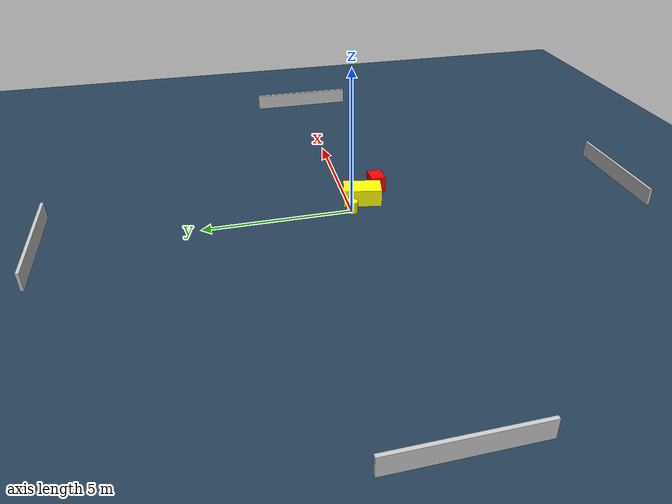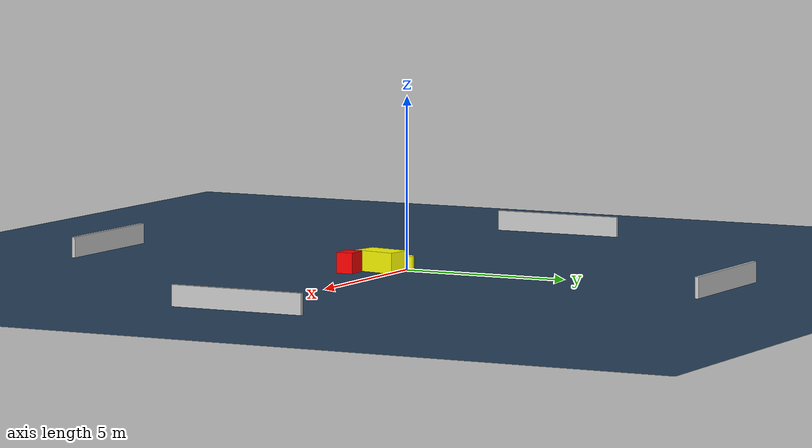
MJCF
<?xml version="1.0" ?>
<mujoco model="generated_environment">
  <option timestep="0.01" integrator="RK4" cone="elliptic"/>
  <default>
    <geom density="1"/>
  </default>
  <asset>
    <texture builtin="gradient" height="3072" name="skybox" rgb1="0.3 0.5 0.7" rgb2="0 0 0" type="skybox" width="512"/>
    <texture builtin="checker" height="300" name="groundplane" rgb1="0.2 0.3 0.4" rgb2="0.1 0.2 0.3" type="2d" width="300"/>
    <material name="groundplane" reflectance="0.2" texrepeat="5 5" texture="groundplane"/>
  </asset>
  <worldbody>
    <light dir="0 0 -1" directional="true" pos="0 0 1.5"/>
    <geom condim="3" friction="0.5 0.005 0.001" material="groundplane" name="floor" pos="0 0 0" size="0 0 0.05" type="plane"/>
    <body name="walls">
      <geom name="wall_1" condim="4" pos="-10.0 0.0 0.3" rgba="0.800000011920929 0.800000011920929 0.800000011920929 1.0" size="0.05 2.0 0.3" type="box"/>
      <geom name="wall_2" condim="4" pos="10.0 0.0 0.3" rgba="0.800000011920929 0.800000011920929 0.800000011920929 1.0" size="0.05 2.0 0.3" type="box"/>
      <geom name="wall_3" condim="4" pos="0.0 -10.0 0.3" rgba="0.800000011920929 0.800000011920929 0.800000011920929 1.0" size="2.0 0.05 0.3" type="box"/>
      <geom name="wall_4" condim="4" pos="0.0 10.0 0.3" rgba="0.800000011920929 0.800000011920929 0.800000011920929 1.0" size="2.0 0.05 0.3" type="box"/>
    </body>
    <body name="robot">
      <joint name="joint_x" type="slide" pos="0 0 0" axis="1 0 0"/>
      <joint name="joint_y" type="slide" pos="0 0 0" axis="0 1 0"/>
      <geom name="robot" type="cylinder" pos="0.0 0.0 0.2" size="0.2 0.2 0.0" mass="5.0" friction="1.0 0.005 0.0001" condim="4" rgba="1.0 1.0 0.0 1.0"/>
    </body>
    <body name="obstacle_1_movable">
      <geom name="obstacle_1_movable" condim="4" pos="0.6008489639811503 -0.5116655468290778 0.3" euler="0 0 169.06659101146" friction="0.0 0.005 0.001" rgba="1.0 1.0 0.0 1.0" size="0.3870105051766851 0.6474220146993899 0.3" type="box" mass="0.1"/>
      <joint type="free"/>
    </body>
    <body name="obstacle_2_static">
      <geom name="obstacle_2_static" condim="4" pos="1.3080717725199216 -1.1976931251856011 0.3" euler="0 0 1.5283947026847544" friction="0.0 0.005 0.001" rgba="1.0 0.0 0.0 1.0" size="0.3159843470744137 0.25141938979947437 0.3" type="box"/>
    </body>
  </worldbody>
  <actuator>
    <motor name="actuator_x" joint="joint_x" gear="1" ctrlrange="-1 1"/>
    <motor name="actuator_y" joint="joint_y" gear="1" ctrlrange="-1 1"/>
  </actuator>
</mujoco>
